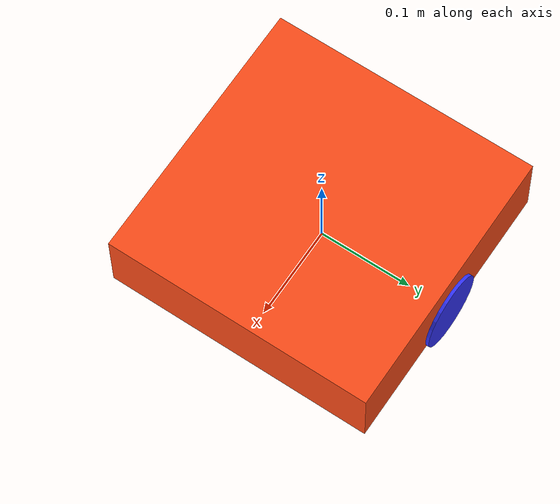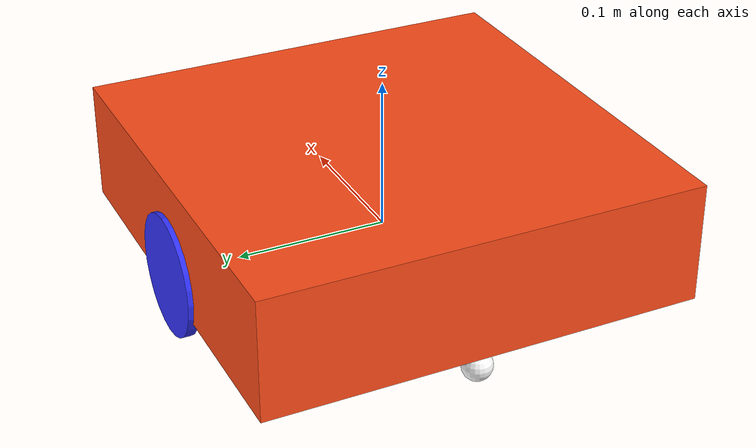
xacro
<?xml version="1.0"?>
<robot xmlns:xacro="http://www.ros.org/wiki/xacro" >

    <xacro:include filename="inertial_macros.xacro"/>

    <xacro:property name="chassis_length" value="0.29"/>
    <xacro:property name="chassis_width" value="0.29"/>
    <xacro:property name="chassis_height" value="0.08"/>
    <xacro:property name="chassis_mass" value="1.0"/>
    <xacro:property name="wheel_radius" value="0.04"/>
    <xacro:property name="wheel_thickness" value="0.007"/>
    <xacro:property name="wheel_mass" value="0.05"/>
    <xacro:property name="wheel_offset_x" value="0.145"/>
    <xacro:property name="wheel_offset_y" value="0.145"/>
    <xacro:property name="wheel_offset_z" value="0.015"/>
    <xacro:property name="caster_wheel_radius" value="0.01"/>
    <xacro:property name="caster_wheel_mass" value="0.01"/>
    <xacro:property name="caster_wheel_back_offset_x" value="0.015"/>
    <xacro:property name="caster_wheel_front_offset_x" value="0.26"/>
    <xacro:property name="caster_wheel_offset_z" value="${wheel_offset_z - wheel_radius + caster_wheel_radius}"/>

    <material name="white">
        <color rgba="1 1 1 1" />
    </material>

    <material name="orange">
        <color rgba="1 0.3 0.1 1"/>
    </material>

    <material name="blue">
        <color rgba="0.2 0.2 1 1"/>
    </material>

    <material name="black">
        <color rgba="0 0 0 1"/>
    </material>

    <material name="red">
        <color rgba="1 0 0 1"/>
    </material>

    <!-- BASE LINK -->

    <link name="base_link">

    </link>

    <!-- BASE_FOOTPRINT LINK -->

    <joint name="base_footprint_joint" type="fixed">
        <parent link="base_link"/>
        <child link="base_footprint"/>
        <origin xyz="0 0 0" rpy="0 0 0"/>
    </joint>

    <link name="base_footprint">
    </link>

    <!-- CHASSIS LINK -->

    <joint name="chassis_joint" type="fixed">
        <parent link="base_link"/>
        <child link="chassis"/>
        <origin xyz="${-wheel_offset_x} 0 ${-wheel_offset_z}"/>
    </joint>

    <link name="chassis">
        <visual>
            <origin xyz="${chassis_length/2} 0 ${chassis_height/2}"/>
            <geometry>
                <box size="${chassis_length} ${chassis_width} ${chassis_height}"/>
            </geometry>
            <material name="orange"/>
        </visual>
        <collision>
            <origin xyz="${chassis_length/2} 0 ${chassis_height/2}"/>
            <geometry>
                <box size="${chassis_length} ${chassis_width} ${chassis_height}"/>
            </geometry>
        </collision>
        <xacro:inertial_box mass="0.5" x="${chassis_length}" y="${chassis_width}" z="${chassis_height}">
            <origin xyz="${chassis_length/2} 0 ${chassis_height/2}" rpy="0 0 0"/>
        </xacro:inertial_box>
    </link>

    <gazebo reference="chassis">
        <material>Gazebo/Orange</material>
    </gazebo>

    <!-- LEFT WHEEL LINK -->

    <joint name="left_wheel" type="continuous">
        <parent link="base_link"/>
        <child link="left_wheel_link"/>
        <origin xyz="0 ${wheel_offset_y} 0" rpy="-${pi/2} 0 0" />
        <axis xyz="0 0 1"/>
    </joint>

    <link name="left_wheel_link">
        <visual>
            <geometry>
                <cylinder radius="${wheel_radius}" length="${wheel_thickness}"/>
            </geometry>
            <material name="blue"/>
        </visual>
        <collision>
            <geometry>
                <sphere radius="${wheel_radius}"/>
            </geometry>
        </collision>
        <xacro:inertial_cylinder mass="${wheel_mass}" length="${wheel_thickness}" radius="${wheel_radius}">
            <origin xyz="0 0 0" rpy="0 0 0"/>
        </xacro:inertial_cylinder>
    </link>

    <gazebo reference="left_wheel_link">
        <material>Gazebo/Blue</material>
    </gazebo>

    <!-- RIGHT WHEEL LINK -->

    <joint name="right_wheel" type="continuous">
        <parent link="base_link"/>
        <child link="right_wheel_link"/>
        <origin xyz="0 ${-wheel_offset_y} 0" rpy="${pi/2} 0 0" />
        <axis xyz="0 0 -1"/>
    </joint>

    <link name="right_wheel_link">
        <visual>
            <geometry>
                <cylinder radius="${wheel_radius}" length="${wheel_thickness}"/>
            </geometry>
            <material name="blue"/>
        </visual>
        <collision>
            <geometry>
                <sphere radius="${wheel_radius}"/>
            </geometry>
        </collision>
        <xacro:inertial_cylinder mass="${wheel_mass}" length="${wheel_thickness}" radius="${wheel_radius}">
            <origin xyz="0 0 0" rpy="0 0 0"/>
        </xacro:inertial_cylinder>
    </link>

    <gazebo reference="right_wheel_link">
        <material>Gazebo/Blue</material>
    </gazebo>

    <!-- CASTER WHEEL BACK LINK -->

    <joint name="caster_wheel_back_joint" type="fixed">
        <parent link="chassis"/>
        <child link="caster_wheel_back"/>
        <origin xyz="${caster_wheel_back_offset_x} 0 ${caster_wheel_offset_z}"/>
    </joint>

    <link name="caster_wheel_back">
        <visual>
            <geometry>
                <sphere radius="${caster_wheel_radius}"/>
            </geometry>
            <material name="white"/>
        </visual>
        <collision>
            <geometry>
                <sphere radius="${caster_wheel_radius}"/>
            </geometry>
        </collision>
        <xacro:inertial_sphere mass="${caster_wheel_mass}" radius="${caster_wheel_radius}">
            <origin xyz="0 0 0" rpy="0 0 0"/>
        </xacro:inertial_sphere>
    </link>

    <gazebo reference="caster_wheel_back">
        <material>Gazebo/White</material>
        <mu1 value="0.001"/>
        <mu2 value="0.001"/>
    </gazebo>

    <!-- CASTER WHEEL FRONT LINK -->

    <joint name="caster_wheel_front_joint" type="fixed">
        <parent link="chassis"/>
        <child link="caster_wheel_front"/>
        <origin xyz="${caster_wheel_front_offset_x} 0 ${caster_wheel_offset_z}"/>
    </joint>

    <link name="caster_wheel_front">
        <visual>
            <geometry>
                <sphere radius="${caster_wheel_radius}"/>
            </geometry>
            <material name="white"/>
        </visual>
        <collision>
            <geometry>
                <sphere radius="${caster_wheel_radius}"/>
            </geometry>
        </collision>
        <xacro:inertial_sphere mass="${caster_wheel_mass}" radius="${caster_wheel_radius}">
            <origin xyz="0 0 0" rpy="0 0 0"/>
        </xacro:inertial_sphere>
    </link>

    <gazebo reference="caster_wheel_front">
        <material>Gazebo/White</material>
        <mu1 value="0.001"/>
        <mu2 value="0.001"/>
    </gazebo>

</robot>
